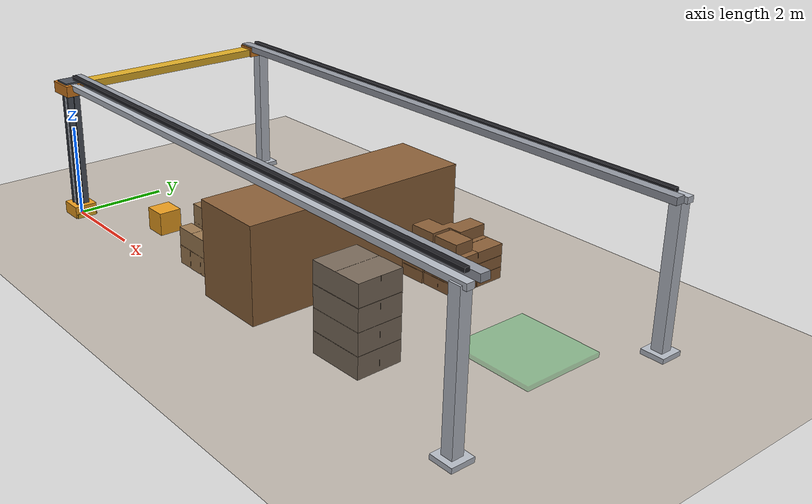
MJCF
<mujoco model="ppp_warehouse">
  <compiler angle="degree" coordinate="local"
            meshdir="assets/aws_warehouse/meshes"
            texturedir="assets/aws_warehouse/textures"/>
  <option timestep="0.002" gravity="0 0 -9.81" integrator="implicitfast"/>

  <visual>
    <headlight ambient="0.50 0.52 0.55" diffuse="0.28 0.30 0.33" specular="0 0 0"/>
    <rgba haze="0.72 0.74 0.78 0.25"/>
    <global azimuth="135" elevation="-22" offwidth="1920" offheight="1080"/>
  </visual>

  <asset>
    <texture type="skybox" builtin="gradient" rgb1="0.78 0.80 0.84" rgb2="0.58 0.61 0.66" width="512" height="1536"/>
    <texture name="ground_tex" type="2d" file="ground.png"/>

    <material name="floor" texture="ground_tex" texuniform="true" texrepeat="3 2" reflectance="0.01"/>
    <material name="frame" rgba="0.72 0.74 0.78 1" specular="0.1" shininess="0.1"/>
    <material name="rail" rgba="0.30 0.32 0.36 1" specular="0.12" shininess="0.1"/>
    <material name="rail_top" rgba="0.58 0.60 0.64 1" specular="0.15" shininess="0.1"/>
    <material name="carriage" rgba="0.82 0.48 0.12 1" specular="0.12" shininess="0.1"/>
    <material name="gantry" rgba="0.88 0.68 0.15 1" specular="0.12" shininess="0.1"/>
    <material name="z_axis" rgba="0.40 0.62 0.48 1" specular="0.12" shininess="0.1"/>
    <material name="chain" rgba="0.12 0.12 0.14 1"/>
    <material name="cable" rgba="0.20 0.22 0.25 1"/>
    <material name="cargo" rgba="0.92 0.62 0.12 1"/>
    <material name="clutter_cardboard" rgba="0.62 0.48 0.32 1" specular="0.04" shininess="0.03"/>
    <material name="clutter_crate" rgba="0.55 0.38 0.22 1" specular="0.05" shininess="0.04"/>
    <material name="clutter_pallet" rgba="0.48 0.42 0.36 1" specular="0.04" shininess="0.03"/>

    <!-- AWS clutter meshes scaled to match perception obstacle boxes (1:5 preview). -->
    <mesh name="clutter_a" file="clutter_a.obj" scale="0.589 0.478 0.896"/>
    <mesh name="clutter_c" file="clutter_c.obj" scale="0.646 0.885 0.555"/>
    <mesh name="clutter_d" file="clutter_d.obj" scale="0.655 0.967 1.013"/>
  </asset>

  <worldbody>
    <light name="key" pos="6 2.5 7" dir="0 0 -1" directional="true" diffuse="0.42 0.44 0.47" specular="0.06 0.06 0.06" castshadow="false"/>
    <light name="fill" pos="-1 6 5" dir="0.35 -0.55 -1" directional="true" diffuse="0.16 0.17 0.20" specular="0 0 0"/>

    <!-- Collision policy (v1.1.2): gantry frame geoms are visual-only (contype=0).
         Contacts enabled on floor, planning obstacles (obs_*), and cargo_box. -->
    <geom name="floor" type="plane" pos="6 2.5 0" size="0 0 0.05" material="floor"/>

    <!-- Collision boxes (planning / perception); invisible in renders. -->
    <geom name="obs_a" type="box" pos="4.2 0.95 0.5" size="0.7 0.55 0.5" rgba="0 0 0 0"/>
    <geom name="obs_b" type="box" pos="7.4 4.25 0.45" size="0.6 0.65 0.45" rgba="0 0 0 0"/>
    <geom name="obs_c" type="box" pos="8.8 0.75 0.5" size="0.6 0.45 0.5" rgba="0 0 0 0"/>
    <geom name="obs_d" type="box" pos="6.0 2.5 1.0" size="0.8 2.5 1.0" rgba="0 0 0 0"/>
    <geom name="goal_zone" type="box" pos="10.5 3.2 0.05" size="0.9 0.9 0.05" rgba="0.20 0.75 0.35 0.35" contype="0" conaffinity="0"/>

    <!-- AWS box-cluster visuals (mesh origin = bottom corner of footprint). -->
    <geom name="obs_a_vis" type="mesh" mesh="clutter_a" pos="3.5 0.4 0" material="clutter_cardboard" contype="0" conaffinity="0"/>
    <geom name="obs_b_vis" type="mesh" mesh="clutter_c" pos="6.8 3.6 0" material="clutter_crate" contype="0" conaffinity="0"/>
    <geom name="obs_c_vis" type="mesh" mesh="clutter_d" pos="8.2 0.3 0" material="clutter_pallet" contype="0" conaffinity="0"/>
    <geom name="obs_d_vis" type="box" pos="6.0 2.5 1.0" size="0.8 2.5 1.0" material="clutter_crate" contype="0" conaffinity="0"/>

    <body name="gantry_base" pos="0 0 0">
      <geom name="foot_fl" type="box" pos="0 0 0.05" size="0.24 0.24 0.05" material="frame" contype="0" conaffinity="0"/>
      <geom name="foot_fr" type="box" pos="0 5 0.05" size="0.24 0.24 0.05" material="frame" contype="0" conaffinity="0"/>
      <geom name="foot_bl" type="box" pos="12 0 0.05" size="0.24 0.24 0.05" material="frame" contype="0" conaffinity="0"/>
      <geom name="foot_br" type="box" pos="12 5 0.05" size="0.24 0.24 0.05" material="frame" contype="0" conaffinity="0"/>

      <geom name="leg_fl" type="box" pos="0 0 1.5" size="0.12 0.12 1.48" material="frame" contype="0" conaffinity="0"/>
      <geom name="leg_fr" type="box" pos="0 5 1.5" size="0.12 0.12 1.48" material="frame" contype="0" conaffinity="0"/>
      <geom name="leg_bl" type="box" pos="12 0 1.5" size="0.12 0.12 1.48" material="frame" contype="0" conaffinity="0"/>
      <geom name="leg_br" type="box" pos="12 5 1.5" size="0.12 0.12 1.48" material="frame" contype="0" conaffinity="0"/>

      <geom name="tie_front" type="box" pos="6 0 2.98" size="6.2 0.08 0.06" material="frame" contype="0" conaffinity="0"/>
      <geom name="tie_back" type="box" pos="6 5 2.98" size="6.2 0.08 0.06" material="frame" contype="0" conaffinity="0"/>

      <geom name="runway_rail_near" type="box" pos="6 0.28 3.04" size="6.2 0.10 0.07" material="rail_top" contype="0" conaffinity="0"/>
      <geom name="runway_rail_far" type="box" pos="6 4.72 3.04" size="6.2 0.10 0.07" material="rail_top" contype="0" conaffinity="0"/>
      <geom name="chain_y_near" type="box" pos="6 0.12 3.12" size="6.0 0.05 0.04" material="chain" contype="0" conaffinity="0"/>
      <geom name="chain_y_far" type="box" pos="6 4.88 3.12" size="6.0 0.05 0.04" material="chain" contype="0" conaffinity="0"/>

      <body name="x_carriage" pos="0 0 3">
        <joint name="joint_x" type="slide" axis="1 0 0" range="0 12" damping="12"/>
        <geom name="x_car_near" type="box" pos="0 0.28 -0.03" size="0.20 0.14 0.11" material="carriage" contype="0" conaffinity="0"/>
        <geom name="x_car_far" type="box" pos="0 4.72 -0.03" size="0.20 0.14 0.11" material="carriage" contype="0" conaffinity="0"/>
        <geom name="x_bridge" type="box" pos="0 2.5 -0.05" size="0.16 2.46 0.08" material="gantry" contype="0" conaffinity="0"/>
        <geom name="x_bridge_rail_l" type="box" pos="0 0.28 -0.02" size="0.08 0.12 0.04" material="rail" contype="0" conaffinity="0"/>
        <geom name="x_bridge_rail_r" type="box" pos="0 4.72 -0.02" size="0.08 0.12 0.04" material="rail" contype="0" conaffinity="0"/>

        <body name="y_carriage" pos="0 0 0">
          <joint name="joint_y" type="slide" axis="0 1 0" range="0 5" damping="12"/>
          <geom name="y_trolley" type="box" pos="0 0 -0.08" size="0.30 0.22 0.12" material="carriage" contype="0" conaffinity="0"/>
          <geom name="y_trolley_head" type="box" pos="0 0 0.02" size="0.20 0.18 0.06" material="rail" contype="0" conaffinity="0"/>

          <body name="z_hoist" pos="0 0 -3">
            <joint name="joint_z" type="slide" axis="0 0 1" range="0 3" damping="18"/>
            <geom name="z_column" type="box" size="0.11 0.11 1.45" pos="0 0 1.45" material="z_axis" contype="0" conaffinity="0"/>
            <geom name="z_guide_l" type="box" size="0.03 0.14 1.45" pos="-0.10 0 1.45" material="rail" contype="0" conaffinity="0"/>
            <geom name="z_guide_r" type="box" size="0.03 0.14 1.45" pos="0.10 0 1.45" material="rail" contype="0" conaffinity="0"/>
            <geom name="chain_z" type="box" pos="0 0 2.85" size="0.05 0.18 0.04" material="chain" contype="0" conaffinity="0"/>
            <geom name="cable_l" type="cylinder" fromto="-0.12 0 0 -0.12 0 3" size="0.012" material="cable" contype="0" conaffinity="0"/>
            <geom name="cable_r" type="cylinder" fromto="0.12 0 0 0.12 0 3" size="0.012" material="cable" contype="0" conaffinity="0"/>
            <geom name="ee_gripper" type="box" size="0.28 0.22 0.08" material="gantry" contype="0" conaffinity="0"/>
            <geom name="ee_spreader" type="box" pos="0 0 -0.06" size="0.30 0.26 0.04" material="rail" contype="0" conaffinity="0"/>
          </body>
        </body>
      </body>
    </body>

    <!-- Cargo free body (MuJoCo requires freejoint at worldbody top level). -->
    <body name="cargo" pos="2.0 1.0 0.25">
      <freejoint name="cargo_free"/>
      <geom name="cargo_box" type="box" size="0.25 0.25 0.25" material="cargo" mass="2.0"/>
    </body>

    <!-- Floor cargo shown before pick and after place (mocap, visual only). -->
    <body name="cargo_floor" mocap="true">
      <geom name="cargo_floor_box" type="box" size="0.25 0.25 0.25" material="cargo" contype="0" conaffinity="0"/>
    </body>

    <camera name="overview" pos="1.38 12.87 8.00" xyaxes="-0.914 -0.406 0 0.225 -0.507 0.832" fovy="48"/>
    <camera name="aisle" mode="targetbody" target="x_carriage" pos="-2.8 2.5 1.5" fovy="58"/>
    <camera name="topdown" mode="targetbody" target="gantry_base" pos="6 2.5 15" fovy="38"/>
    <camera name="follow" mode="targetbody" target="z_hoist" pos="3 1.5 1.5" fovy="48"/>
    <camera name="pick" mode="targetbody" target="cargo" pos="1.8 0.6 0.7" fovy="42"/>
  </worldbody>

  <actuator>
    <velocity name="act_joint_x" joint="joint_x" kv="1" forcelimited="true" forcerange="-5000 5000"/>
    <velocity name="act_joint_y" joint="joint_y" kv="1" forcelimited="true" forcerange="-5000 5000"/>
    <velocity name="act_joint_z" joint="joint_z" kv="1" forcelimited="true" forcerange="-30000 30000"/>
  </actuator>

  <equality>
    <weld name="cargo_weld" body1="z_hoist" body2="cargo"
          relpose="0 0 -0.34 1 0 0 0" active="false"/>
  </equality>
</mujoco>
